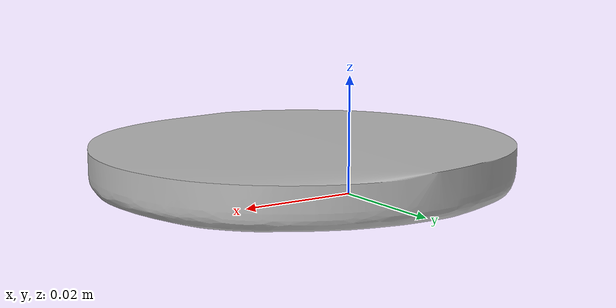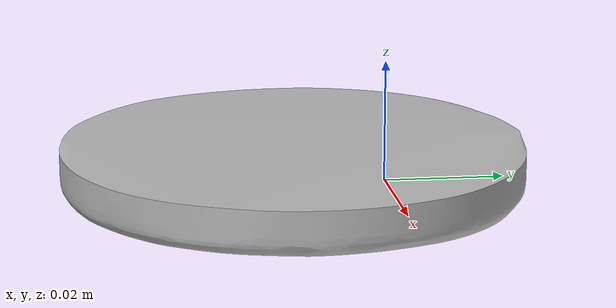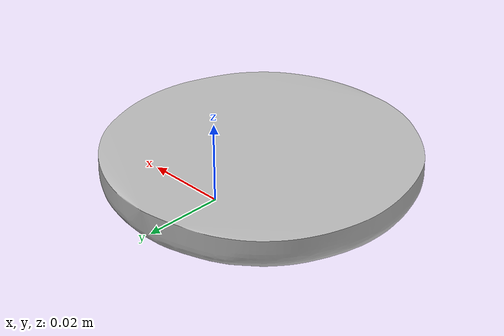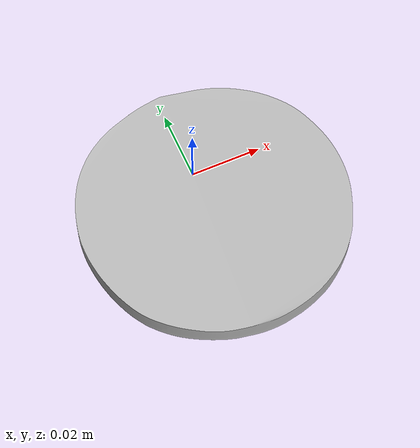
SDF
<?xml version='1.0' encoding='utf-8'?>
<sdf version="1.7">
  <model name="coffee_mug">
    <link name="base_link">
      <inertial>
        <mass>0.350000</mass>
        <pose>0.000049 0.034023 0.012070 0 0 0</pose>
        <inertia>
          <ixx>0.000447</ixx>
          <iyy>0.000421</iyy>
          <izz>0.000387</izz>
          <ixy>-0.000000</ixy>
          <ixz>0.000001</ixz>
          <iyz>0.000010</iyz>
        </inertia>
      </inertial>
      <visual name="visual">
        <geometry>
          <mesh>
            <uri>coffee_mug.gltf</uri>
          </mesh>
        </geometry>
      </visual>
      <collision name="collision_0">
        <surface>
          <friction>
            <ode>
              <mu>0.500</mu>
              <mu2>0.500</mu2>
            </ode>
          </friction>
        </surface>
        <geometry>
          <mesh>
            <uri>coffee_mug_collision_0.obj</uri>
          </mesh>
        </geometry>
      </collision>
      <collision name="collision_1">
        <surface>
          <friction>
            <ode>
              <mu>0.500</mu>
              <mu2>0.500</mu2>
            </ode>
          </friction>
        </surface>
        <geometry>
          <mesh>
            <uri>coffee_mug_collision_1.obj</uri>
          </mesh>
        </geometry>
      </collision>
      <collision name="collision_2">
        <surface>
          <friction>
            <ode>
              <mu>0.500</mu>
              <mu2>0.500</mu2>
            </ode>
          </friction>
        </surface>
        <geometry>
          <mesh>
            <uri>coffee_mug_collision_2.obj</uri>
          </mesh>
        </geometry>
      </collision>
      <collision name="collision_3">
        <surface>
          <friction>
            <ode>
              <mu>0.500</mu>
              <mu2>0.500</mu2>
            </ode>
          </friction>
        </surface>
        <geometry>
          <mesh>
            <uri>coffee_mug_collision_3.obj</uri>
          </mesh>
        </geometry>
      </collision>
      <collision name="collision_4">
        <surface>
          <friction>
            <ode>
              <mu>0.500</mu>
              <mu2>0.500</mu2>
            </ode>
          </friction>
        </surface>
        <geometry>
          <mesh>
            <uri>coffee_mug_collision_4.obj</uri>
          </mesh>
        </geometry>
      </collision>
      <collision name="collision_5">
        <surface>
          <friction>
            <ode>
              <mu>0.500</mu>
              <mu2>0.500</mu2>
            </ode>
          </friction>
        </surface>
        <geometry>
          <mesh>
            <uri>coffee_mug_collision_5.obj</uri>
          </mesh>
        </geometry>
      </collision>
      <collision name="collision_6">
        <surface>
          <friction>
            <ode>
              <mu>0.500</mu>
              <mu2>0.500</mu2>
            </ode>
          </friction>
        </surface>
        <geometry>
          <mesh>
            <uri>coffee_mug_collision_6.obj</uri>
          </mesh>
        </geometry>
      </collision>
      <collision name="collision_7">
        <surface>
          <friction>
            <ode>
              <mu>0.500</mu>
              <mu2>0.500</mu2>
            </ode>
          </friction>
        </surface>
        <geometry>
          <mesh>
            <uri>coffee_mug_collision_7.obj</uri>
          </mesh>
        </geometry>
      </collision>
      <collision name="collision_8">
        <surface>
          <friction>
            <ode>
              <mu>0.500</mu>
              <mu2>0.500</mu2>
            </ode>
          </friction>
        </surface>
        <geometry>
          <mesh>
            <uri>coffee_mug_collision_8.obj</uri>
          </mesh>
        </geometry>
      </collision>
      <collision name="collision_9">
        <surface>
          <friction>
            <ode>
              <mu>0.500</mu>
              <mu2>0.500</mu2>
            </ode>
          </friction>
        </surface>
        <geometry>
          <mesh>
            <uri>coffee_mug_collision_9.obj</uri>
          </mesh>
        </geometry>
      </collision>
      <collision name="collision_10">
        <surface>
          <friction>
            <ode>
              <mu>0.500</mu>
              <mu2>0.500</mu2>
            </ode>
          </friction>
        </surface>
        <geometry>
          <mesh>
            <uri>coffee_mug_collision_10.obj</uri>
          </mesh>
        </geometry>
      </collision>
      <collision name="collision_11">
        <surface>
          <friction>
            <ode>
              <mu>0.500</mu>
              <mu2>0.500</mu2>
            </ode>
          </friction>
        </surface>
        <geometry>
          <mesh>
            <uri>coffee_mug_collision_11.obj</uri>
          </mesh>
        </geometry>
      </collision>
      <collision name="collision_12">
        <surface>
          <friction>
            <ode>
              <mu>0.500</mu>
              <mu2>0.500</mu2>
            </ode>
          </friction>
        </surface>
        <geometry>
          <mesh>
            <uri>coffee_mug_collision_12.obj</uri>
          </mesh>
        </geometry>
      </collision>
      <collision name="collision_13">
        <surface>
          <friction>
            <ode>
              <mu>0.500</mu>
              <mu2>0.500</mu2>
            </ode>
          </friction>
        </surface>
        <geometry>
          <mesh>
            <uri>coffee_mug_collision_13.obj</uri>
          </mesh>
        </geometry>
      </collision>
      <collision name="collision_14">
        <surface>
          <friction>
            <ode>
              <mu>0.500</mu>
              <mu2>0.500</mu2>
            </ode>
          </friction>
        </surface>
        <geometry>
          <mesh>
            <uri>coffee_mug_collision_14.obj</uri>
          </mesh>
        </geometry>
      </collision>
      <collision name="collision_15">
        <surface>
          <friction>
            <ode>
              <mu>0.500</mu>
              <mu2>0.500</mu2>
            </ode>
          </friction>
        </surface>
        <geometry>
          <mesh>
            <uri>coffee_mug_collision_15.obj</uri>
          </mesh>
        </geometry>
      </collision>
      <collision name="collision_16">
        <surface>
          <friction>
            <ode>
              <mu>0.500</mu>
              <mu2>0.500</mu2>
            </ode>
          </friction>
        </surface>
        <geometry>
          <mesh>
            <uri>coffee_mug_collision_16.obj</uri>
          </mesh>
        </geometry>
      </collision>
      <collision name="collision_17">
        <surface>
          <friction>
            <ode>
              <mu>0.500</mu>
              <mu2>0.500</mu2>
            </ode>
          </friction>
        </surface>
        <geometry>
          <mesh>
            <uri>coffee_mug_collision_17.obj</uri>
          </mesh>
        </geometry>
      </collision>
      <collision name="collision_18">
        <surface>
          <friction>
            <ode>
              <mu>0.500</mu>
              <mu2>0.500</mu2>
            </ode>
          </friction>
        </surface>
        <geometry>
          <mesh>
            <uri>coffee_mug_collision_18.obj</uri>
          </mesh>
        </geometry>
      </collision>
      <collision name="collision_19">
        <surface>
          <friction>
            <ode>
              <mu>0.500</mu>
              <mu2>0.500</mu2>
            </ode>
          </friction>
        </surface>
        <geometry>
          <mesh>
            <uri>coffee_mug_collision_19.obj</uri>
          </mesh>
        </geometry>
      </collision>
    </link>
  </model>
</sdf>
